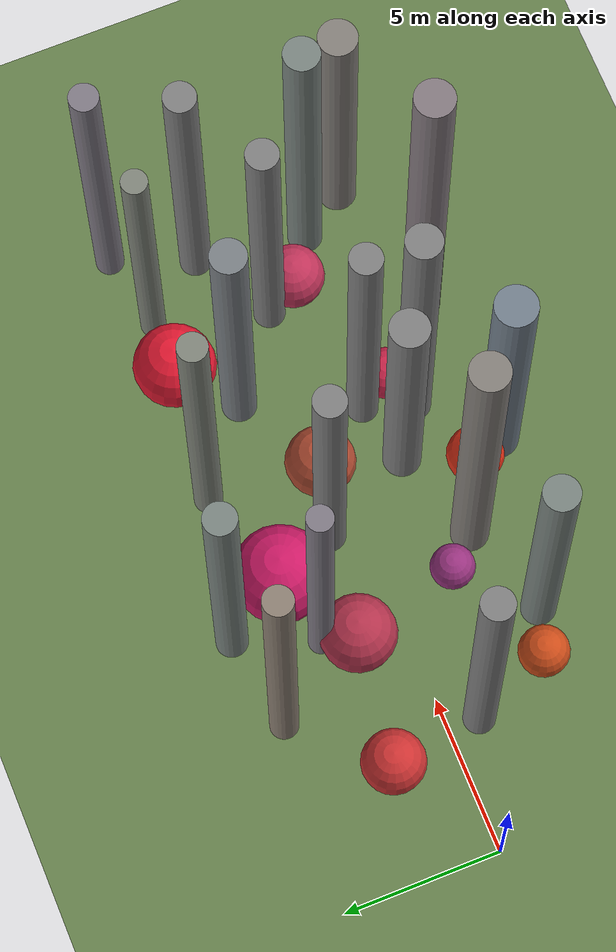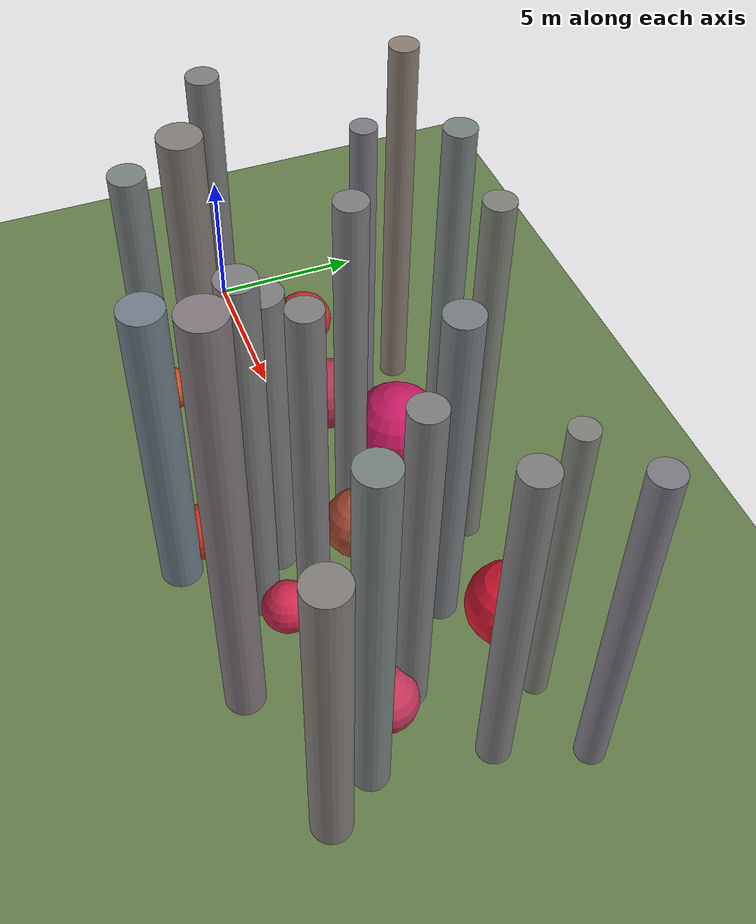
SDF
<?xml version="1.0"?>
<sdf version="1.9">
  <world name="obstacle_field">

    <!-- Physics -->
    <physics name="1ms" type="ignored">
      <max_step_size>0.001</max_step_size>
      <real_time_factor>1.0</real_time_factor>
    </physics>

    <!-- Required plugins for PX4 SITL -->
    <plugin filename="gz-sim-physics-system"       name="gz::sim::systems::Physics"/>
    <plugin filename="gz-sim-user-commands-system"  name="gz::sim::systems::UserCommands"/>
    <plugin filename="gz-sim-scene-broadcaster-system" name="gz::sim::systems::SceneBroadcaster"/>
    <plugin filename="gz-sim-sensors-system"        name="gz::sim::systems::Sensors">
      <render_engine>ogre2</render_engine>
    </plugin>
    <plugin filename="gz-sim-imu-system"            name="gz::sim::systems::Imu"/>
    <plugin filename="gz-sim-air-pressure-system"   name="gz::sim::systems::AirPressure"/>
    <plugin filename="gz-sim-magnetometer-system"   name="gz::sim::systems::Magnetometer"/>

    <!-- Sun light -->
    <light type="directional" name="sun">
      <cast_shadows>true</cast_shadows>
      <pose>0 0 10 0 0 0</pose>
      <diffuse>0.8 0.8 0.8 1</diffuse>
      <specular>0.2 0.2 0.2 1</specular>
      <direction>-0.5 0.1 -0.9</direction>
    </light>

    <!-- Ground plane -->
    <model name="ground_plane">
      <static>true</static>
      <link name="link">
        <collision name="collision">
          <geometry><plane><normal>0 0 1</normal><size>100 100</size></plane></geometry>
        </collision>
        <visual name="visual">
          <geometry><plane><normal>0 0 1</normal><size>100 100</size></plane></geometry>
          <material>
            <ambient>0.4 0.5 0.3 1</ambient>
            <diffuse>0.4 0.5 0.3 1</diffuse>
          </material>
        </visual>
      </link>
    </model>

    <!--  SPHERES (10): floating obstacles at body height                 -->

    <model name="sphere_0"><static>true</static><link name="link">
      <pose>3.5 2.0 1.0 0 0 0</pose>
      <collision name="c"><geometry><sphere><radius>1.0</radius></sphere></geometry></collision>
      <visual name="v"><geometry><sphere><radius>1.0</radius></sphere></geometry>
        <material><ambient>0.8 0.2 0.2 1</ambient><diffuse>0.8 0.2 0.2 1</diffuse></material>
      </visual>
    </link></model>

    <model name="sphere_1"><static>true</static><link name="link">
      <pose>5.0 -3.5 0.8 0 0 0</pose>
      <collision name="c"><geometry><sphere><radius>0.8</radius></sphere></geometry></collision>
      <visual name="v"><geometry><sphere><radius>0.8</radius></sphere></geometry>
        <material><ambient>0.8 0.3 0.1 1</ambient><diffuse>0.8 0.3 0.1 1</diffuse></material>
      </visual>
    </link></model>

    <model name="sphere_2"><static>true</static><link name="link">
      <pose>7.5 1.5 1.2 0 0 0</pose>
      <collision name="c"><geometry><sphere><radius>1.2</radius></sphere></geometry></collision>
      <visual name="v"><geometry><sphere><radius>1.2</radius></sphere></geometry>
        <material><ambient>0.7 0.2 0.3 1</ambient><diffuse>0.7 0.2 0.3 1</diffuse></material>
      </visual>
    </link></model>

    <model name="sphere_3"><static>true</static><link name="link">
      <pose>8.5 -2.0 0.7 0 0 0</pose>
      <collision name="c"><geometry><sphere><radius>0.7</radius></sphere></geometry></collision>
      <visual name="v"><geometry><sphere><radius>0.7</radius></sphere></geometry>
        <material><ambient>0.6 0.2 0.5 1</ambient><diffuse>0.6 0.2 0.5 1</diffuse></material>
      </visual>
    </link></model>

    <model name="sphere_4"><static>true</static><link name="link">
      <pose>10.0 3.0 1.5 0 0 0</pose>
      <collision name="c"><geometry><sphere><radius>1.5</radius></sphere></geometry></collision>
      <visual name="v"><geometry><sphere><radius>1.5</radius></sphere></geometry>
        <material><ambient>0.8 0.1 0.4 1</ambient><diffuse>0.8 0.1 0.4 1</diffuse></material>
      </visual>
    </link></model>

    <model name="sphere_5"><static>true</static><link name="link">
      <pose>11.5 -4.0 0.9 0 0 0</pose>
      <collision name="c"><geometry><sphere><radius>0.9</radius></sphere></geometry></collision>
      <visual name="v"><geometry><sphere><radius>0.9</radius></sphere></geometry>
        <material><ambient>0.9 0.2 0.1 1</ambient><diffuse>0.9 0.2 0.1 1</diffuse></material>
      </visual>
    </link></model>

    <model name="sphere_6"><static>true</static><link name="link">
      <pose>13.0 0.5 1.1 0 0 0</pose>
      <collision name="c"><geometry><sphere><radius>1.1</radius></sphere></geometry></collision>
      <visual name="v"><geometry><sphere><radius>1.1</radius></sphere></geometry>
        <material><ambient>0.7 0.3 0.2 1</ambient><diffuse>0.7 0.3 0.2 1</diffuse></material>
      </visual>
    </link></model>

    <model name="sphere_7"><static>true</static><link name="link">
      <pose>15.0 -2.5 0.8 0 0 0</pose>
      <collision name="c"><geometry><sphere><radius>0.8</radius></sphere></geometry></collision>
      <visual name="v"><geometry><sphere><radius>0.8</radius></sphere></geometry>
        <material><ambient>0.8 0.15 0.3 1</ambient><diffuse>0.8 0.15 0.3 1</diffuse></material>
      </visual>
    </link></model>

    <model name="sphere_8"><static>true</static><link name="link">
      <pose>17.5 3.5 1.3 0 0 0</pose>
      <collision name="c"><geometry><sphere><radius>1.3</radius></sphere></geometry></collision>
      <visual name="v"><geometry><sphere><radius>1.3</radius></sphere></geometry>
        <material><ambient>0.9 0.1 0.2 1</ambient><diffuse>0.9 0.1 0.2 1</diffuse></material>
      </visual>
    </link></model>

    <model name="sphere_9"><static>true</static><link name="link">
      <pose>19.0 -1.0 1.0 0 0 0</pose>
      <collision name="c"><geometry><sphere><radius>1.0</radius></sphere></geometry></collision>
      <visual name="v"><geometry><sphere><radius>1.0</radius></sphere></geometry>
        <material><ambient>0.75 0.2 0.35 1</ambient><diffuse>0.75 0.2 0.35 1</diffuse></material>
      </visual>
    </link></model>

    <!--  CYLINDERS (20): tall pillars (cube_h_range: 10-15 m)           -->
    <!--  Centred at z = h/2 so they rise from ground to height h.       -->

    <!-- radius=0.5 h=12: centre z=6 -->
    <model name="pillar_0"><static>true</static><link name="link">
      <pose>4.0 -1.0 6.0 0 0 0</pose>
      <collision name="c"><geometry><cylinder><radius>0.5</radius><length>12</length></cylinder></geometry></collision>
      <visual name="v"><geometry><cylinder><radius>0.5</radius><length>12</length></cylinder></geometry>
        <material><ambient>0.5 0.5 0.5 1</ambient><diffuse>0.5 0.5 0.5 1</diffuse></material>
      </visual>
    </link></model>

    <model name="pillar_1"><static>true</static><link name="link">
      <pose>6.0 4.5 6.5 0 0 0</pose>
      <collision name="c"><geometry><cylinder><radius>0.45</radius><length>13</length></cylinder></geometry></collision>
      <visual name="v"><geometry><cylinder><radius>0.45</radius><length>13</length></cylinder></geometry>
        <material><ambient>0.55 0.5 0.45 1</ambient><diffuse>0.55 0.5 0.45 1</diffuse></material>
      </visual>
    </link></model>

    <model name="pillar_2"><static>true</static><link name="link">
      <pose>6.5 -4.0 5.5 0 0 0</pose>
      <collision name="c"><geometry><cylinder><radius>0.55</radius><length>11</length></cylinder></geometry></collision>
      <visual name="v"><geometry><cylinder><radius>0.55</radius><length>11</length></cylinder></geometry>
        <material><ambient>0.48 0.52 0.5 1</ambient><diffuse>0.48 0.52 0.5 1</diffuse></material>
      </visual>
    </link></model>

    <model name="pillar_3"><static>true</static><link name="link">
      <pose>8.0 2.5 6.0 0 0 0</pose>
      <collision name="c"><geometry><cylinder><radius>0.4</radius><length>12</length></cylinder></geometry></collision>
      <visual name="v"><geometry><cylinder><radius>0.4</radius><length>12</length></cylinder></geometry>
        <material><ambient>0.5 0.48 0.52 1</ambient><diffuse>0.5 0.48 0.52 1</diffuse></material>
      </visual>
    </link></model>

    <model name="pillar_4"><static>true</static><link name="link">
      <pose>9.5 -3.0 7.0 0 0 0</pose>
      <collision name="c"><geometry><cylinder><radius>0.6</radius><length>14</length></cylinder></geometry></collision>
      <visual name="v"><geometry><cylinder><radius>0.6</radius><length>14</length></cylinder></geometry>
        <material><ambient>0.52 0.5 0.48 1</ambient><diffuse>0.52 0.5 0.48 1</diffuse></material>
      </visual>
    </link></model>

    <model name="pillar_5"><static>true</static><link name="link">
      <pose>11.0 1.0 6.0 0 0 0</pose>
      <collision name="c"><geometry><cylinder><radius>0.5</radius><length>12</length></cylinder></geometry></collision>
      <visual name="v"><geometry><cylinder><radius>0.5</radius><length>12</length></cylinder></geometry>
        <material><ambient>0.5 0.5 0.5 1</ambient><diffuse>0.5 0.5 0.5 1</diffuse></material>
      </visual>
    </link></model>

    <model name="pillar_6"><static>true</static><link name="link">
      <pose>12.0 -5.0 5.5 0 0 0</pose>
      <collision name="c"><geometry><cylinder><radius>0.65</radius><length>11</length></cylinder></geometry></collision>
      <visual name="v"><geometry><cylinder><radius>0.65</radius><length>11</length></cylinder></geometry>
        <material><ambient>0.45 0.5 0.55 1</ambient><diffuse>0.45 0.5 0.55 1</diffuse></material>
      </visual>
    </link></model>

    <model name="pillar_7"><static>true</static><link name="link">
      <pose>13.5 4.0 6.5 0 0 0</pose>
      <collision name="c"><geometry><cylinder><radius>0.45</radius><length>13</length></cylinder></geometry></collision>
      <visual name="v"><geometry><cylinder><radius>0.45</radius><length>13</length></cylinder></geometry>
        <material><ambient>0.5 0.52 0.48 1</ambient><diffuse>0.5 0.52 0.48 1</diffuse></material>
      </visual>
    </link></model>

    <model name="pillar_8"><static>true</static><link name="link">
      <pose>14.5 -1.5 6.0 0 0 0</pose>
      <collision name="c"><geometry><cylinder><radius>0.5</radius><length>12</length></cylinder></geometry></collision>
      <visual name="v"><geometry><cylinder><radius>0.5</radius><length>12</length></cylinder></geometry>
        <material><ambient>0.5 0.5 0.5 1</ambient><diffuse>0.5 0.5 0.5 1</diffuse></material>
      </visual>
    </link></model>

    <model name="pillar_9"><static>true</static><link name="link">
      <pose>16.0 2.0 6.0 0 0 0</pose>
      <collision name="c"><geometry><cylinder><radius>0.55</radius><length>12</length></cylinder></geometry></collision>
      <visual name="v"><geometry><cylinder><radius>0.55</radius><length>12</length></cylinder></geometry>
        <material><ambient>0.48 0.5 0.52 1</ambient><diffuse>0.48 0.5 0.52 1</diffuse></material>
      </visual>
    </link></model>

    <model name="pillar_10"><static>true</static><link name="link">
      <pose>17.0 -4.5 7.5 0 0 0</pose>
      <collision name="c"><geometry><cylinder><radius>0.6</radius><length>15</length></cylinder></geometry></collision>
      <visual name="v"><geometry><cylinder><radius>0.6</radius><length>15</length></cylinder></geometry>
        <material><ambient>0.52 0.48 0.5 1</ambient><diffuse>0.52 0.48 0.5 1</diffuse></material>
      </visual>
    </link></model>

    <model name="pillar_11"><static>true</static><link name="link">
      <pose>18.5 0.0 6.0 0 0 0</pose>
      <collision name="c"><geometry><cylinder><radius>0.5</radius><length>12</length></cylinder></geometry></collision>
      <visual name="v"><geometry><cylinder><radius>0.5</radius><length>12</length></cylinder></geometry>
        <material><ambient>0.5 0.5 0.5 1</ambient><diffuse>0.5 0.5 0.5 1</diffuse></material>
      </visual>
    </link></model>

    <model name="pillar_12"><static>true</static><link name="link">
      <pose>19.5 3.5 5.5 0 0 0</pose>
      <collision name="c"><geometry><cylinder><radius>0.4</radius><length>11</length></cylinder></geometry></collision>
      <visual name="v"><geometry><cylinder><radius>0.4</radius><length>11</length></cylinder></geometry>
        <material><ambient>0.5 0.52 0.48 1</ambient><diffuse>0.5 0.52 0.48 1</diffuse></material>
      </visual>
    </link></model>

    <model name="pillar_13"><static>true</static><link name="link">
      <pose>20.5 -2.0 6.5 0 0 0</pose>
      <collision name="c"><geometry><cylinder><radius>0.55</radius><length>13</length></cylinder></geometry></collision>
      <visual name="v"><geometry><cylinder><radius>0.55</radius><length>13</length></cylinder></geometry>
        <material><ambient>0.48 0.52 0.5 1</ambient><diffuse>0.48 0.52 0.5 1</diffuse></material>
      </visual>
    </link></model>

    <model name="pillar_14"><static>true</static><link name="link">
      <pose>21.0 1.5 6.0 0 0 0</pose>
      <collision name="c"><geometry><cylinder><radius>0.5</radius><length>12</length></cylinder></geometry></collision>
      <visual name="v"><geometry><cylinder><radius>0.5</radius><length>12</length></cylinder></geometry>
        <material><ambient>0.5 0.5 0.5 1</ambient><diffuse>0.5 0.5 0.5 1</diffuse></material>
      </visual>
    </link></model>

    <model name="pillar_15"><static>true</static><link name="link">
      <pose>21.5 -3.5 5.5 0 0 0</pose>
      <collision name="c"><geometry><cylinder><radius>0.6</radius><length>11</length></cylinder></geometry></collision>
      <visual name="v"><geometry><cylinder><radius>0.6</radius><length>11</length></cylinder></geometry>
        <material><ambient>0.52 0.5 0.48 1</ambient><diffuse>0.52 0.5 0.48 1</diffuse></material>
      </visual>
    </link></model>

    <model name="pillar_16"><static>true</static><link name="link">
      <pose>22.0 4.0 6.0 0 0 0</pose>
      <collision name="c"><geometry><cylinder><radius>0.45</radius><length>12</length></cylinder></geometry></collision>
      <visual name="v"><geometry><cylinder><radius>0.45</radius><length>12</length></cylinder></geometry>
        <material><ambient>0.5 0.48 0.52 1</ambient><diffuse>0.5 0.48 0.52 1</diffuse></material>
      </visual>
    </link></model>

    <model name="pillar_17"><static>true</static><link name="link">
      <pose>14.0 -3.0 6.5 0 0 0</pose>
      <collision name="c"><geometry><cylinder><radius>0.55</radius><length>13</length></cylinder></geometry></collision>
      <visual name="v"><geometry><cylinder><radius>0.55</radius><length>13</length></cylinder></geometry>
        <material><ambient>0.5 0.5 0.5 1</ambient><diffuse>0.5 0.5 0.5 1</diffuse></material>
      </visual>
    </link></model>

    <model name="pillar_18"><static>true</static><link name="link">
      <pose>9.0 5.0 6.0 0 0 0</pose>
      <collision name="c"><geometry><cylinder><radius>0.5</radius><length>12</length></cylinder></geometry></collision>
      <visual name="v"><geometry><cylinder><radius>0.5</radius><length>12</length></cylinder></geometry>
        <material><ambient>0.48 0.52 0.5 1</ambient><diffuse>0.48 0.52 0.5 1</diffuse></material>
      </visual>
    </link></model>

    <model name="pillar_19"><static>true</static><link name="link">
      <pose>12.5 -2.0 5.5 0 0 0</pose>
      <collision name="c"><geometry><cylinder><radius>0.6</radius><length>11</length></cylinder></geometry></collision>
      <visual name="v"><geometry><cylinder><radius>0.6</radius><length>11</length></cylinder></geometry>
        <material><ambient>0.5 0.5 0.5 1</ambient><diffuse>0.5 0.5 0.5 1</diffuse></material>
      </visual>
    </link></model>

  </world>
</sdf>
